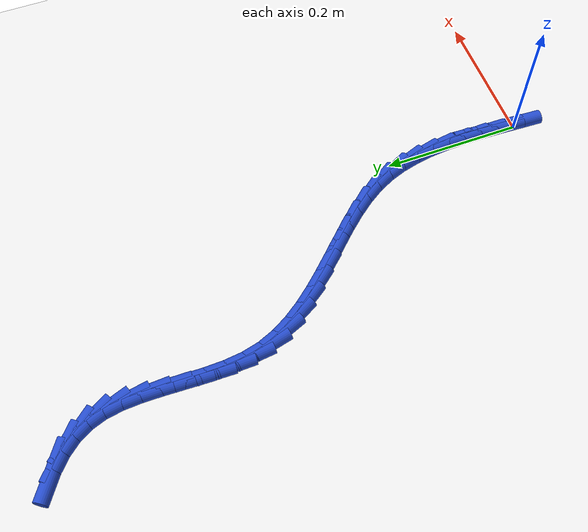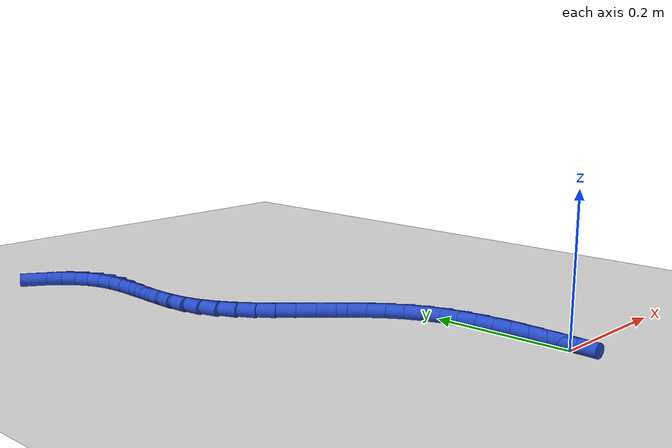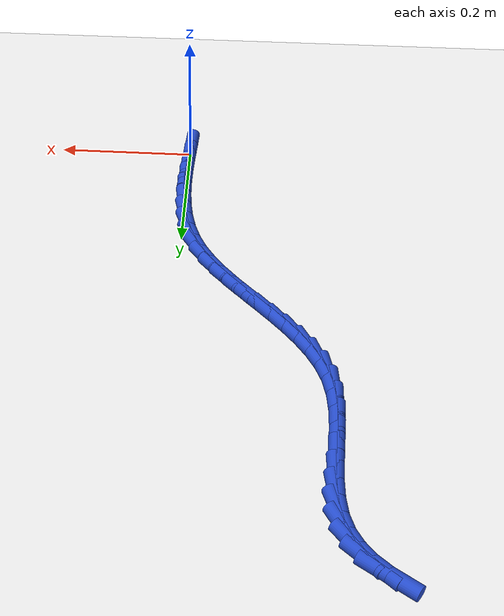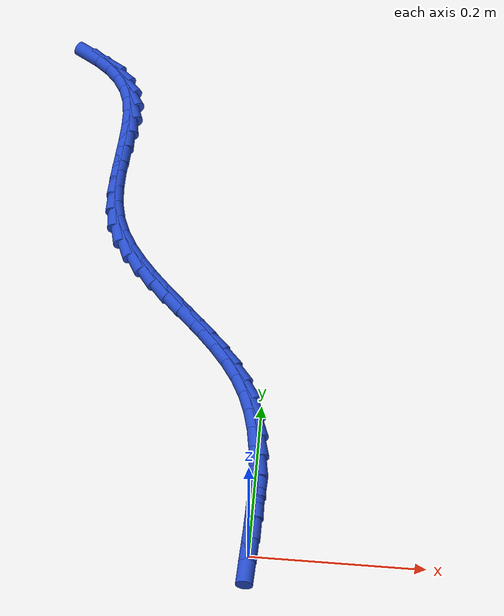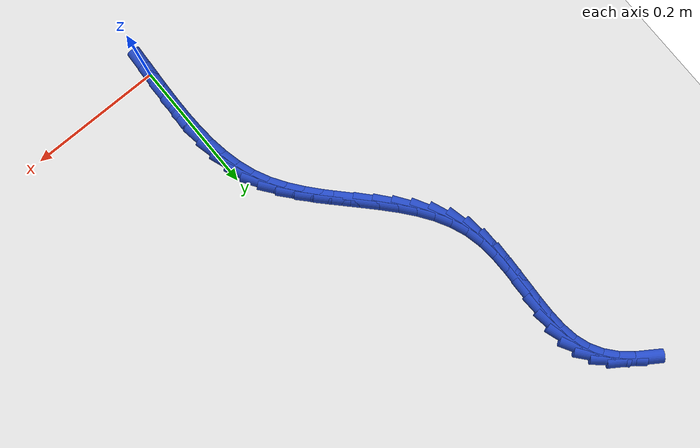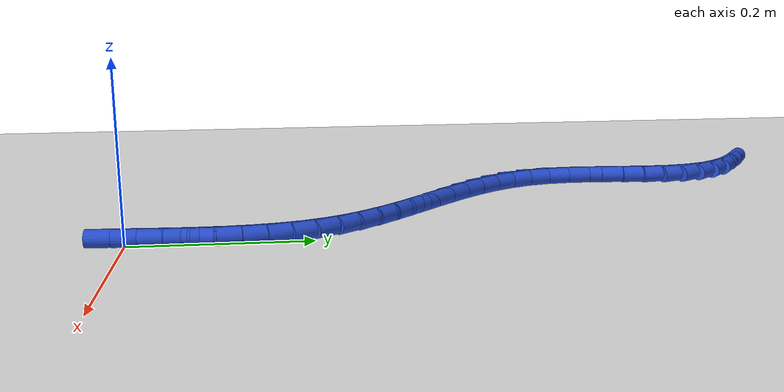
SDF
<sdf version="1.6">
 <world name="default">
  <model name="ground_plane">
   <static>1</static>
   <link name="link">
    <collision name="collision">
     <geometry><plane><normal>0 0 1</normal><size>100 100</size></plane></geometry>
     <surface><friction><ode><mu>100</mu><mu2>50</mu2></ode></friction></surface>
    </collision>
    <visual name="visual">
     <cast_shadows>0</cast_shadows>
     <geometry><plane><normal>0 0 1</normal><size>100 100</size></plane></geometry>
     <material>
      <script><uri>file://media/materials/scripts/gazebo.material</uri><name>Gazebo/WhiteGlow</name></script>
     </material>
    </visual>
   </link>
  </model>
  <model name="line">
   <link name="link_0">
    <pose>-2.6020852139652106e-18 1.3877787807814457e-17 0.01 0 1.57 1.5227151973883521</pose>
    <collision name="collision">
     <geometry><cylinder><radius>0.01</radius><length>0.08</length></cylinder></geometry>
    </collision>
    <visual name="visual">
     <material>
      <script><name>Gazebo/Blue</name><uri>file://media/materials/scripts/gazebo.material</uri></script>
     </material>
     <geometry><cylinder><radius>0.01</radius><length>0.08</length></cylinder></geometry>
    </visual>
   </link>
   <link name="link_1">
    <pose>0.00130948528221154 0.027213920630176223 0.01 0 1.57 1.5368727448066788</pose>
    <collision name="collision">
     <geometry><cylinder><radius>0.01</radius><length>0.08</length></cylinder></geometry>
    </collision>
    <visual name="visual">
     <material>
      <script><name>Gazebo/Blue</name><uri>file://media/materials/scripts/gazebo.material</uri></script>
     </material>
     <geometry><cylinder><radius>0.01</radius><length>0.08</length></cylinder></geometry>
    </visual>
   </link>
   <link name="link_2">
    <pose>0.0022365369850442913 0.05453108471755519 0.01 0 1.57 1.5634438854718762</pose>
    <collision name="collision">
     <geometry><cylinder><radius>0.01</radius><length>0.08</length></cylinder></geometry>
    </collision>
    <visual name="visual">
     <material>
      <script><name>Gazebo/Blue</name><uri>file://media/materials/scripts/gazebo.material</uri></script>
     </material>
     <geometry><cylinder><radius>0.01</radius><length>0.08</length></cylinder></geometry>
    </visual>
   </link>
   <link name="link_3">
    <pose>0.0024368110577792333 0.0817697194909264 0.01 0 1.57 -1.5385280119894014</pose>
    <collision name="collision">
     <geometry><cylinder><radius>0.01</radius><length>0.08</length></cylinder></geometry>
    </collision>
    <visual name="visual">
     <material>
      <script><name>Gazebo/Blue</name><uri>file://media/materials/scripts/gazebo.material</uri></script>
     </material>
     <geometry><cylinder><radius>0.01</radius><length>0.08</length></cylinder></geometry>
    </visual>
   </link>
   <link name="link_4">
    <pose>0.0015659634496973463 0.10874805217907922 0.01 0 1.57 -1.484850480481901</pose>
    <collision name="collision">
     <geometry><cylinder><radius>0.01</radius><length>0.08</length></cylinder></geometry>
    </collision>
    <visual name="visual">
     <material>
      <script><name>Gazebo/Blue</name><uri>file://media/materials/scripts/gazebo.material</uri></script>
     </material>
     <geometry><cylinder><radius>0.01</radius><length>0.08</length></cylinder></geometry>
    </visual>
   </link>
   <link name="link_5">
    <pose>-0.0007203498899203851 0.13528431001080327 0.01 0 1.57 -1.4159009603216661</pose>
    <collision name="collision">
     <geometry><cylinder><radius>0.01</radius><length>0.08</length></cylinder></geometry>
    </collision>
    <visual name="visual">
     <material>
      <script><name>Gazebo/Blue</name><uri>file://media/materials/scripts/gazebo.material</uri></script>
     </material>
     <geometry><cylinder><radius>0.01</radius><length>0.08</length></cylinder></geometry>
    </visual>
   </link>
   <link name="link_6">
    <pose>-0.004766473011792985 0.16119672021488798 0.01 0 1.57 -1.3305623658237322</pose>
    <collision name="collision">
     <geometry><cylinder><radius>0.01</radius><length>0.08</length></cylinder></geometry>
    </collision>
    <visual name="visual">
     <material>
      <script><name>Gazebo/Blue</name><uri>file://media/materials/scripts/gazebo.material</uri></script>
     </material>
     <geometry><cylinder><radius>0.01</radius><length>0.08</length></cylinder></geometry>
    </visual>
   </link>
   <link name="link_7">
    <pose>-0.01091674996663946 0.18630351002012288 0.01 0 1.57 -1.2283349155625514</pose>
    <collision name="collision">
     <geometry><cylinder><radius>0.01</radius><length>0.08</length></cylinder></geometry>
    </collision>
    <visual name="visual">
     <material>
      <script><name>Gazebo/Blue</name><uri>file://media/materials/scripts/gazebo.material</uri></script>
     </material>
     <geometry><cylinder><radius>0.01</radius><length>0.08</length></cylinder></geometry>
    </visual>
   </link>
   <link name="link_8">
    <pose>-0.019515524805178843 0.2104229066552974 0.01 0 1.57 -1.110789758326662</pose>
    <collision name="collision">
     <geometry><cylinder><radius>0.01</radius><length>0.08</length></cylinder></geometry>
    </collision>
    <visual name="visual">
     <material>
      <script><name>Gazebo/Blue</name><uri>file://media/materials/scripts/gazebo.material</uri></script>
     </material>
     <geometry><cylinder><radius>0.01</radius><length>0.08</length></cylinder></geometry>
    </visual>
   </link>
   <link name="link_9">
    <pose>-0.030890254631956136 0.2333809655288267 0.01 0 1.57 -0.9987403075591761</pose>
    <collision name="collision">
     <geometry><cylinder><radius>0.01</radius><length>0.08</length></cylinder></geometry>
    </collision>
    <visual name="visual">
     <material>
      <script><name>Gazebo/Blue</name><uri>file://media/materials/scripts/gazebo.material</uri></script>
     </material>
     <geometry><cylinder><radius>0.01</radius><length>0.08</length></cylinder></geometry>
    </visual>
   </link>
   <link name="link_10">
    <pose>-0.04494034271433664 0.2552021723806003 0.01 0 1.57 -0.9126209751661333</pose>
    <collision name="collision">
     <geometry><cylinder><radius>0.01</radius><length>0.08</length></cylinder></geometry>
    </collision>
    <visual name="visual">
     <material>
      <script><name>Gazebo/Blue</name><uri>file://media/materials/scripts/gazebo.material</uri></script>
     </material>
     <geometry><cylinder><radius>0.01</radius><length>0.08</length></cylinder></geometry>
    </visual>
   </link>
   <link name="link_11">
    <pose>-0.061113875863956175 0.2761202269935363 0.01 0 1.57 -0.8520430432106814</pose>
    <collision name="collision">
     <geometry><cylinder><radius>0.01</radius><length>0.08</length></cylinder></geometry>
    </collision>
    <visual name="visual">
     <material>
      <script><name>Gazebo/Blue</name><uri>file://media/materials/scripts/gazebo.material</uri></script>
     </material>
     <geometry><cylinder><radius>0.01</radius><length>0.08</length></cylinder></geometry>
    </visual>
   </link>
   <link name="link_12">
    <pose>-0.07883739733771278 0.29637881596608007 0.01 0 1.57 -0.815038468041573</pose>
    <collision name="collision">
     <geometry><cylinder><radius>0.01</radius><length>0.08</length></cylinder></geometry>
    </collision>
    <visual name="visual">
     <material>
      <script><name>Gazebo/Blue</name><uri>file://media/materials/scripts/gazebo.material</uri></script>
     </material>
     <geometry><cylinder><radius>0.01</radius><length>0.08</length></cylinder></geometry>
    </visual>
   </link>
   <link name="link_13">
    <pose>-0.09753745039250451 0.31622162589667735 0.01 0 1.57 -0.8000355833414103</pose>
    <collision name="collision">
     <geometry><cylinder><radius>0.01</radius><length>0.08</length></cylinder></geometry>
    </collision>
    <visual name="visual">
     <material>
      <script><name>Gazebo/Blue</name><uri>file://media/materials/scripts/gazebo.material</uri></script>
     </material>
     <geometry><cylinder><radius>0.01</radius><length>0.08</length></cylinder></geometry>
    </visual>
   </link>
   <link name="link_14">
    <pose>-0.1166405782852293 0.33589234338377333 0.01 0 1.57 -0.8063276071482272</pose>
    <collision name="collision">
     <geometry><cylinder><radius>0.01</radius><length>0.08</length></cylinder></geometry>
    </collision>
    <visual name="visual">
     <material>
      <script><name>Gazebo/Blue</name><uri>file://media/materials/scripts/gazebo.material</uri></script>
     </material>
     <geometry><cylinder><radius>0.01</radius><length>0.08</length></cylinder></geometry>
    </visual>
   </link>
   <link name="link_15">
    <pose>-0.13557332427278532 0.35563465502581404 0.01 0 1.57 -0.8342183226331656</pose>
    <collision name="collision">
     <geometry><cylinder><radius>0.01</radius><length>0.08</length></cylinder></geometry>
    </collision>
    <visual name="visual">
     <material>
      <script><name>Gazebo/Blue</name><uri>file://media/materials/scripts/gazebo.material</uri></script>
     </material>
     <geometry><cylinder><radius>0.01</radius><length>0.08</length></cylinder></geometry>
    </visual>
   </link>
   <link name="link_16">
    <pose>-0.15376223161207062 0.3756922474212447 0.01 0 1.57 -0.8849646210219787</pose>
    <collision name="collision">
     <geometry><cylinder><radius>0.01</radius><length>0.08</length></cylinder></geometry>
    </collision>
    <visual name="visual">
     <material>
      <script><name>Gazebo/Blue</name><uri>file://media/materials/scripts/gazebo.material</uri></script>
     </material>
     <geometry><cylinder><radius>0.01</radius><length>0.08</length></cylinder></geometry>
    </visual>
   </link>
   <link name="link_17">
    <pose>-0.17063384355998318 0.3963088071685109 0.01 0 1.57 -0.9604649542369275</pose>
    <collision name="collision">
     <geometry><cylinder><radius>0.01</radius><length>0.08</length></cylinder></geometry>
    </collision>
    <visual name="visual">
     <material>
      <script><name>Gazebo/Blue</name><uri>file://media/materials/scripts/gazebo.material</uri></script>
     </material>
     <geometry><cylinder><radius>0.01</radius><length>0.08</length></cylinder></geometry>
    </visual>
   </link>
   <link name="link_18">
    <pose>-0.18561470337342095 0.417728020866058 0.01 0 1.57 -1.0624813587259974</pose>
    <collision name="collision">
     <geometry><cylinder><radius>0.01</radius><length>0.08</length></cylinder></geometry>
    </collision>
    <visual name="visual">
     <material>
      <script><name>Gazebo/Blue</name><uri>file://media/materials/scripts/gazebo.material</uri></script>
     </material>
     <geometry><cylinder><radius>0.01</radius><length>0.08</length></cylinder></geometry>
    </visual>
   </link>
   <link name="link_19">
    <pose>-0.19813135430928216 0.44019357511233187 0.01 0 1.57 -1.191133856044571</pose>
    <collision name="collision">
     <geometry><cylinder><radius>0.01</radius><length>0.08</length></cylinder></geometry>
    </collision>
    <visual name="visual">
     <material>
      <script><name>Gazebo/Blue</name><uri>file://media/materials/scripts/gazebo.material</uri></script>
     </material>
     <geometry><cylinder><radius>0.01</radius><length>0.08</length></cylinder></geometry>
    </visual>
   </link>
   <link name="link_20">
    <pose>-0.20761033962446473 0.46394915650577795 0.01 0 1.57 -1.3408098253370637</pose>
    <collision name="collision">
     <geometry><cylinder><radius>0.01</radius><length>0.08</length></cylinder></geometry>
    </collision>
    <visual name="visual">
     <material>
      <script><name>Gazebo/Blue</name><uri>file://media/materials/scripts/gazebo.material</uri></script>
     </material>
     <geometry><cylinder><radius>0.01</radius><length>0.08</length></cylinder></geometry>
    </visual>
   </link>
   <link name="link_21">
    <pose>-0.21352588659143334 0.48921532959179437 0.01 0 1.57 -1.4718573937363735</pose>
    <collision name="collision">
     <geometry><cylinder><radius>0.01</radius><length>0.08</length></cylinder></geometry>
    </collision>
    <visual name="visual">
     <material>
      <script><name>Gazebo/Blue</name><uri>file://media/materials/scripts/gazebo.material</uri></script>
     </material>
     <geometry><cylinder><radius>0.01</radius><length>0.08</length></cylinder></geometry>
    </visual>
   </link>
   <link name="link_22">
    <pose>-0.21616652865502825 0.5158178005908122 0.01 0 1.57 -1.5585108084027472</pose>
    <collision name="collision">
     <geometry><cylinder><radius>0.01</radius><length>0.08</length></cylinder></geometry>
    </collision>
    <visual name="visual">
     <material>
      <script><name>Gazebo/Blue</name><uri>file://media/materials/scripts/gazebo.material</uri></script>
     </material>
     <geometry><cylinder><radius>0.01</radius><length>0.08</length></cylinder></geometry>
    </visual>
   </link>
   <link name="link_23">
    <pose>-0.21650357908090703 0.54325119473 0.01 0 1.57 1.5357061955538158</pose>
    <collision name="collision">
     <geometry><cylinder><radius>0.01</radius><length>0.08</length></cylinder></geometry>
    </collision>
    <visual name="visual">
     <material>
      <script><name>Gazebo/Blue</name><uri>file://media/materials/scripts/gazebo.material</uri></script>
     </material>
     <geometry><cylinder><radius>0.01</radius><length>0.08</length></cylinder></geometry>
    </visual>
   </link>
   <link name="link_24">
    <pose>-0.21552947370752712 0.5709998948682413 0.01 0 1.57 1.523901479338909</pose>
    <collision name="collision">
     <geometry><cylinder><radius>0.01</radius><length>0.08</length></cylinder></geometry>
    </collision>
    <visual name="visual">
     <material>
      <script><name>Gazebo/Blue</name><uri>file://media/materials/scripts/gazebo.material</uri></script>
     </material>
     <geometry><cylinder><radius>0.01</radius><length>0.08</length></cylinder></geometry>
    </visual>
   </link>
   <link name="link_25">
    <pose>-0.21423664837334586 0.5985482838644194 0.01 0 1.57 1.5477272675293001</pose>
    <collision name="collision">
     <geometry><cylinder><radius>0.01</radius><length>0.08</length></cylinder></geometry>
    </collision>
    <visual name="visual">
     <material>
      <script><name>Gazebo/Blue</name><uri>file://media/materials/scripts/gazebo.material</uri></script>
     </material>
     <geometry><cylinder><radius>0.01</radius><length>0.08</length></cylinder></geometry>
    </visual>
   </link>
   <link name="link_26">
    <pose>-0.21361753891682042 0.6253807445774175 0.01 0 1.57 -1.5299204816164198</pose>
    <collision name="collision">
     <geometry><cylinder><radius>0.01</radius><length>0.08</length></cylinder></geometry>
    </collision>
    <visual name="visual">
     <material>
      <script><name>Gazebo/Blue</name><uri>file://media/materials/scripts/gazebo.material</uri></script>
     </material>
     <geometry><cylinder><radius>0.01</radius><length>0.08</length></cylinder></geometry>
    </visual>
   </link>
   <link name="link_27">
    <pose>-0.21466458117640813 0.6509816598661187 0.01 0 1.57 -1.4166803304599629</pose>
    <collision name="collision">
     <geometry><cylinder><radius>0.01</radius><length>0.08</length></cylinder></geometry>
    </collision>
    <visual name="visual">
     <material>
      <script><name>Gazebo/Blue</name><uri>file://media/materials/scripts/gazebo.material</uri></script>
     </material>
     <geometry><cylinder><radius>0.01</radius><length>0.08</length></cylinder></geometry>
    </visual>
   </link>
   <link name="link_28">
    <pose>-0.21837021099056636 0.6748354125894063 0.01 0 1.57 -1.244981446190736</pose>
    <collision name="collision">
     <geometry><cylinder><radius>0.01</radius><length>0.08</length></cylinder></geometry>
    </collision>
    <visual name="visual">
     <material>
      <script><name>Gazebo/Blue</name><uri>file://media/materials/scripts/gazebo.material</uri></script>
     </material>
     <geometry><cylinder><radius>0.01</radius><length>0.08</length></cylinder></geometry>
    </visual>
   </link>
   <link name="link_29">
    <pose>-0.22567438989955135 0.696454658136865 0.01 0 1.57 -1.0485826543027574</pose>
    <collision name="collision">
     <geometry><cylinder><radius>0.01</radius><length>0.08</length></cylinder></geometry>
    </collision>
    <visual name="visual">
     <material>
      <script><name>Gazebo/Blue</name><uri>file://media/materials/scripts/gazebo.material</uri></script>
     </material>
     <geometry><cylinder><radius>0.01</radius><length>0.08</length></cylinder></geometry>
    </visual>
   </link>
   <link name="link_30">
    <pose>-0.2367788423915427 0.7157498052827794 0.01 0 1.57 -0.8675775483024368</pose>
    <collision name="collision">
     <geometry><cylinder><radius>0.01</radius><length>0.08</length></cylinder></geometry>
    </collision>
    <visual name="visual">
     <material>
      <script><name>Gazebo/Blue</name><uri>file://media/materials/scripts/gazebo.material</uri></script>
     </material>
     <geometry><cylinder><radius>0.01</radius><length>0.08</length></cylinder></geometry>
    </visual>
   </link>
   <link name="link_31">
    <pose>-0.2513400833079454 0.7329250153051418 0.01 0 1.57 -0.7127771329329253</pose>
    <collision name="collision">
     <geometry><cylinder><radius>0.01</radius><length>0.08</length></cylinder></geometry>
    </collision>
    <visual name="visual">
     <material>
      <script><name>Gazebo/Blue</name><uri>file://media/materials/scripts/gazebo.material</uri></script>
     </material>
     <geometry><cylinder><radius>0.01</radius><length>0.08</length></cylinder></geometry>
    </visual>
   </link>
   <link name="link_32">
    <pose>-0.2690018738631253 0.7481913209852199 0.01 0 1.57 -0.5867927093861156</pose>
    <collision name="collision">
     <geometry><cylinder><radius>0.01</radius><length>0.08</length></cylinder></geometry>
    </collision>
    <visual name="visual">
     <material>
      <script><name>Gazebo/Blue</name><uri>file://media/materials/scripts/gazebo.material</uri></script>
     </material>
     <geometry><cylinder><radius>0.01</radius><length>0.08</length></cylinder></geometry>
    </visual>
   </link>
   <link name="link_281">
    <pose>0.0013860844901631888 0.027247372126016314 0.01 0 1.57 1.5177363474578693</pose>
    <collision name="collision">
     <geometry><cylinder><radius>0.01</radius><length>0.08</length></cylinder></geometry>
    </collision>
    <visual name="visual">
     <material>
      <script><name>Gazebo/Blue</name><uri>file://media/materials/scripts/gazebo.material</uri></script>
     </material>
     <geometry><cylinder><radius>0.01</radius><length>0.08</length></cylinder></geometry>
    </visual>
   </link>
   <link name="link_282">
    <pose>0.002849330648657583 0.05479869668427776 0.01 0 1.57 1.5188467888497683</pose>
    <collision name="collision">
     <geometry><cylinder><radius>0.01</radius><length>0.08</length></cylinder></geometry>
    </collision>
    <visual name="visual">
     <material>
      <script><name>Gazebo/Blue</name><uri>file://media/materials/scripts/gazebo.material</uri></script>
     </material>
     <geometry><cylinder><radius>0.01</radius><length>0.08</length></cylinder></geometry>
    </visual>
   </link>
  </model>
 </world>
</sdf>
